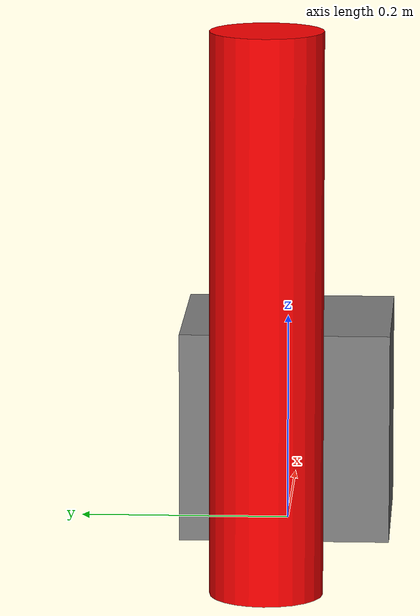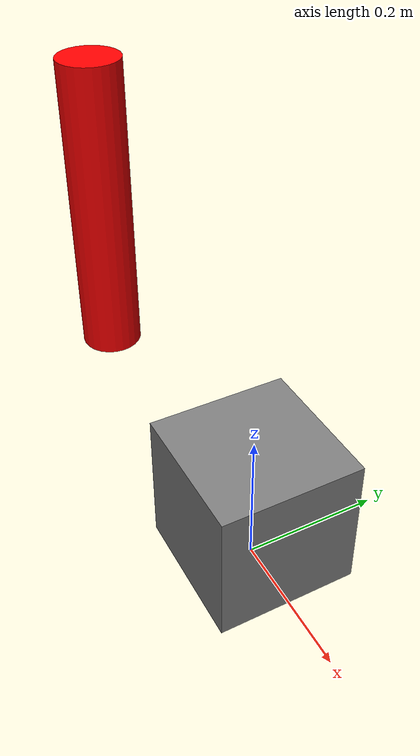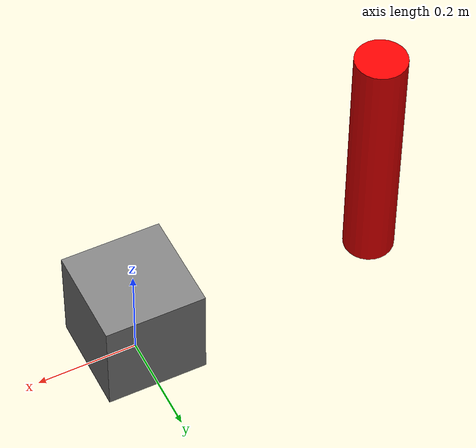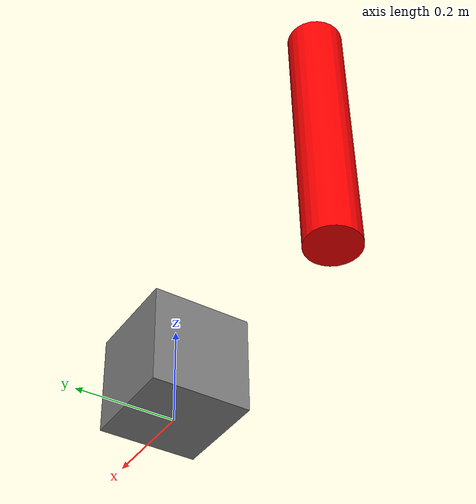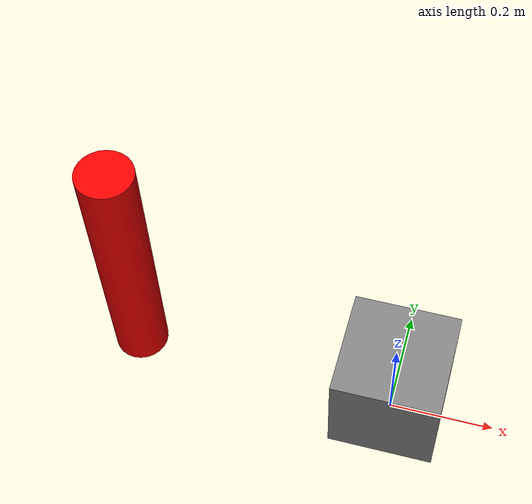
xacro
<?xml version="1.0"?>
<robot xmlns:xacro="http://www.ros.org/wiki/xacro" name="test_robot">

  <!-- 1. 世界连接 -->
  <link name="world"/>

  <joint name="base_joint" type="fixed">
    <parent link="world"/>
    <child link="base_link"/>
    <origin xyz="0 0 0.1"/>
  </joint>

  <!-- 2. 基座 (方块) -->
  <link name="base_link">
    <visual>
      <geometry><box size="0.2 0.2 0.2"/></geometry>
      <material name="gray"><color rgba="0.5 0.5 0.5 1"/></material>
    </visual>
    <collision>
      <geometry><box size="0.2 0.2 0.2"/></geometry>
    </collision>
    <inertial>
      <mass value="10.0"/>
      <origin xyz="0 0 0"/>
      <inertia ixx="0.1" ixy="0" ixz="0" iyy="0.1" iyz="0" izz="0.1"/>
    </inertial>
  </link>

  <!-- 3. 左臂测试 (圆柱) -->
  <joint name="left_joint" type="revolute">
    <parent link="base_link"/>
    <child link="left_arm"/>
    <origin xyz="-0.5 0 0.2"/>
    <axis xyz="0 0 1"/>
    <limit lower="-3.14" upper="3.14" effort="100" velocity="1"/>
  </joint>

  <link name="left_arm">
    <visual>
      <geometry><cylinder radius="0.05" length="0.5"/></geometry>
      <material name="red"><color rgba="1 0 0 1"/></material>
    </visual>
    <collision>
      <geometry><cylinder radius="0.05" length="0.5"/></geometry>
    </collision>
    <inertial>
      <mass value="1.0"/>
      <origin xyz="0 0 0"/>
      <inertia ixx="0.01" ixy="0" ixz="0" iyy="0.01" iyz="0" izz="0.01"/>
    </inertial>
  </link>

  <!-- 4. 简单的 Gazebo 插件 (不加载 YAML，只加载库) -->
  <gazebo>
    <plugin filename="libgazebo_ros2_control.so" name="gazebo_ros2_control">
      <!-- 空参数，测试是否是插件本身导致崩溃 -->
    </plugin>
  </gazebo>

  <ros2_control name="TestSystem" type="system">
    <hardware><plugin>gazebo_ros2_control/GazeboSystem</plugin></hardware>
    <joint name="left_joint">
        <command_interface name="position"/>
        <state_interface name="position"/>
        <state_interface name="velocity"/>
    </joint>
  </ros2_control>

</robot>
